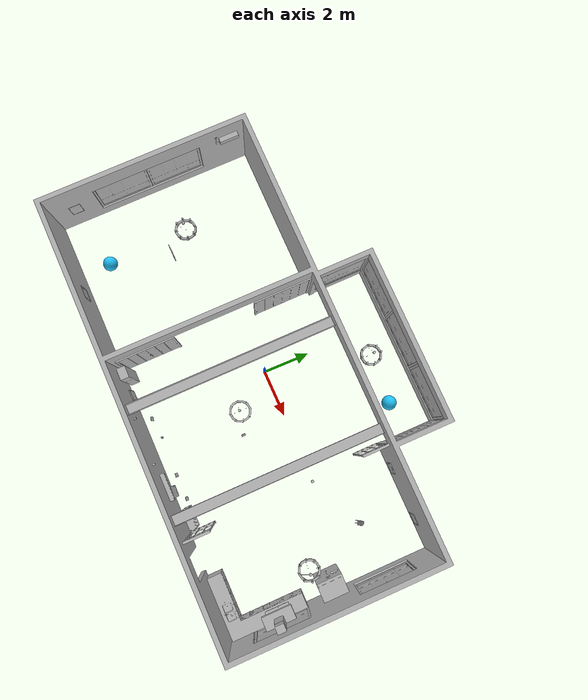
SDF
<sdf version="1.6">
 <world name="default">
  <gravity>0 0 -9.8</gravity>
  <magnetic_field>6e-06 2.3e-05 -4.2e-05</magnetic_field>
  <atmosphere type="adiabatic"/>
  <physics name="default_physics" default="0" type="dart">
   <max_step_size>0.001</max_step_size>
   <real_time_factor>1</real_time_factor>
   <real_time_update_rate>1000</real_time_update_rate>
  </physics>
  <scene>
   <ambient>0.4 0.4 0.4 1</ambient>
   <background>0.7 0.7 0.7 1</background>
   <shadows>false</shadows>
   <grid>false</grid>
   <origin_visual>false</origin_visual>
  </scene>
  <spherical_coordinates>
   <surface_model>EARTH_WGS84</surface_model>
   <latitude_deg>0</latitude_deg>
   <longitude_deg>0</longitude_deg>
   <elevation>0</elevation>
   <heading_deg>0</heading_deg>
  </spherical_coordinates>
  <model name="AirconditionerA_01_001">
   <static>true</static>
   <include><uri>model://aws_robomaker_residential_AirconditionerA_01</uri></include>
   <pose>-9.199410 2.411230 2.084544 0 -0 0</pose>
  </model>
  <model name="AirconditionerB_01_001">
   <static>true</static>
   <include><uri>model://aws_robomaker_residential_AirconditionerB_01</uri></include>
   <pose>-2.004656 -5.226610 0.003485 0 -0 0</pose>
  </model>
  <model name="Ball_01_001">
   <static>true</static>
   <include><uri>model://aws_robomaker_residential_Ball_01</uri></include>
   <pose>3.295503 4.225674 0.318684 0 -0 0</pose>
  </model>
  <model name="Ball_01_003">
   <static>true</static>
   <include><uri>model://aws_robomaker_residential_Ball_01</uri></include>
   <pose>-6.945503 -4.22174 0.318684 0 -0 0</pose>
  </model>
  <model name="Board_01_001">
   <static>true</static>
   <include><uri>model://aws_robomaker_residential_Board_01</uri></include>
   <pose>2.779073 -5.392703 1.538173 0 -0 0</pose>
  </model>
  <model name="Chandelier_01_001">
   <static>true</static>
   <include><uri>model://aws_robomaker_residential_Chandelier_01</uri></include>
   <pose>1.221061 4.155740 1.295000 0 -0 0</pose>
  </model>
  <model name="Chandelier_01_002">
   <static>true</static>
   <include><uri>model://aws_robomaker_residential_Chandelier_01</uri></include>
   <pose>-6.451061 -0.692040 1.810000 0 -0 0</pose>
  </model>
  <model name="Chandelier_01_003">
   <static>true</static>
   <include><uri>model://aws_robomaker_residential_Chandelier_01</uri></include>
   <pose>7.824061 -1.59 1.7510000 0 -0 0</pose>
  </model>
  <model name="Chandelier_01_004">
   <static>true</static>
   <include><uri>model://aws_robomaker_residential_Chandelier_01</uri></include>
   <pose>1.221061 -1.592040 1.7873000 0 -0 0</pose>
  </model>
  <model name="SecurityCamera_01_001">
   <static>true</static>
   <include><uri>model://aws_robomaker_residential_SecurityCamera_01</uri></include>
   <pose>0.842134 -4.996294 0.495067 0 -0 -2.841039</pose>
  </model>
  <model name="CookingBench_01_001">
   <include><uri>model://aws_robomaker_residential_CookingBench_01</uri></include>
   <pose>9.038383 -3.351140 0.903610 0 -0 3.137133</pose>
   <static>true</static>
  </model>
  <model name="FoldingDoor_01_001">
   <static>true</static>
   <include><uri>model://aws_robomaker_residential_FoldingDoor_01</uri></include>
   <pose>-2.461096 1.844219 0.041881 0 -0 0</pose>
  </model>
  <model name="FoldingDoor_01_002">
   <static>true</static>
   <include><uri>model://aws_robomaker_residential_FoldingDoor_01</uri></include>
   <pose>-2.461096 -4.053320 0.041881 0 -0 0</pose>
  </model>
  <model name="HouseWallB_01_001">
   <static>true</static>
   <include><uri>model://aws_robomaker_residential_HouseWallB_01</uri></include>
  </model>
  <model name="FoldingDoor_02_001">
   <static>true</static>
   <include><uri>model://aws_robomaker_residential_FoldingDoor_02</uri></include>
   <pose>4.674231 2.46451 0 0 -0 3.14159</pose>
  </model>
  <model name="FoldingDoor_02_002">
   <static>true</static>
   <include><uri>model://aws_robomaker_residential_FoldingDoor_02</uri></include>
   <pose>4.8912 -4.84968 0 0 -0 0</pose>
  </model>
  <model name="KitchenCabinet_01_001">
   <static>true</static>
   <include><uri>model://aws_robomaker_residential_KitchenCabinet_01</uri></include>
   <pose>8.002009 -3.836509 0.012068 0 -0 -3.140001</pose>
  </model>
  <model name="LightC_01_001">
   <static>true</static>
   <include><uri>model://aws_robomaker_residential_LightC_01</uri></include>
   <pose>1.769567 -5.4443710 2.000000 0 -0 0</pose>
  </model>
  <model name="LightC_01_002">
   <static>true</static>
   <include><uri>model://aws_robomaker_residential_LightC_01</uri></include>
   <pose>-0.138245 -5.4443710 2.000000 0 -0 0</pose>
  </model>
  <model name="PortraitA_01">
   <static>true</static>
   <include><uri>model://aws_robomaker_residential_PortraitA_01</uri></include>
   <pose>-2.712360 -4.817539 1.00000 0 -0 1.566796</pose>
  </model>
  <model name="PortraitB_01">
   <static>true</static>
   <include><uri>model://aws_robomaker_residential_PortraitB_01</uri></include>
   <pose>-1.279683 -5.429630 0.0 -0.076901 0 -3.116718</pose>
  </model>
  <model name="PortraitB_02">
   <static>true</static>
   <include><uri>model://aws_robomaker_residential_PortraitB_02</uri></include>
   <pose>5.737017 3.080310 0.300000 0 -0 0</pose>
  </model>
  <model name="PortraitB_03">
   <static>true</static>
   <include><uri>model://aws_robomaker_residential_PortraitB_03</uri></include>
   <pose>3.071380 -5.349366 0.005494 -0.168428 0.0 3.104232</pose>
  </model>
  <model name="PortraitA_02">
   <static>true</static>
   <include><uri>model://aws_robomaker_residential_PortraitA_02</uri></include>
   <pose>7.937017 3.080310 0.300000 0 -0 3.14</pose>
  </model>
  <model name="PortraitC_01">
   <static>true</static>
   <include><uri>model://aws_robomaker_residential_PortraitC_01</uri></include>
   <pose>-9.294904 -4.526084 1.000000 0 -0 1.554734</pose>
  </model>
  <model name="PortraitE_01">
   <static>true</static>
   <include><uri>model://aws_robomaker_residential_PortraitE_01</uri></include>
   <pose>-5.773094 -5.492466 1.000000 0 -0 3.132627</pose>
  </model>
  <model name="PortraitE_02">
   <static>true</static>
   <include><uri>model://aws_robomaker_residential_PortraitE_02</uri></include>
   <pose>-6.193025 -1.590208 0.3 0 -0 0.004290</pose>
  </model>
  <model name="DeskPortraitA_01">
   <static>true</static>
   <include><uri>model://aws_robomaker_residential_DeskPortraitA_01</uri></include>
   <pose>-0.036864 -5.110156 0.498660 0 -0 2.927784</pose>
  </model>
  <model name="DeskPortraitA_02">
   <static>true</static>
   <include><uri>model://aws_robomaker_residential_DeskPortraitA_02</uri></include>
   <pose>2.046082 -1.892926 0.0703880 -0.018328 -0.000441 1.576216</pose>
  </model>
  <model name="DeskPortraitB_01">
   <static>true</static>
   <include><uri>model://aws_robomaker_residential_DeskPortraitB_01</uri></include>
   <pose>3.547376 -5.083898 -0.012660 -0.336622 -0.000001 3.046741</pose>
  </model>
  <model name="DeskPortraitB_02">
   <static>true</static>
   <include><uri>model://aws_robomaker_residential_DeskPortraitB_02</uri></include>
   <pose>2.486270 -5.102525 -0.012660 -0.336621 0.000000 3.046798</pose>
  </model>
  <model name="Rangehood_01_001">
   <static>true</static>
   <include><uri>model://aws_robomaker_residential_Rangehood_01</uri></include>
   <pose>9.019794 -3.369940 1.507605 0 -0 0</pose>
  </model>
  <model name="Refrigerator_01_001">
   <static>true</static>
   <include><uri>model://aws_robomaker_residential_Refrigerator_01</uri></include>
   <pose>8.702731 -1.032031 0 0 -0 -1.563499</pose>
  </model>
  <model name="ShoeRack_01_001">
   <static>true</static>
   <include><uri>model://aws_robomaker_residential_ShoeRack_01</uri></include>
   <pose>4.297978 -5.173566 0 0 -0 0</pose>
  </model>
  <model name="Tableware_01_001">
   <static>true</static>
   <include><uri>model://aws_robomaker_residential_Tableware_01</uri></include>
   <pose>7.15317 0.982767 0.817812 -0.001238 -0.000976 1.02476</pose>
  </model>
  <model name="RoomWindow_01_001">
   <static>true</static>
   <include><uri>model://aws_robomaker_residential_RoomWindow_01</uri></include>
   <pose>-9.418600 -0.026285 0.502739 0 -0 0</pose>
  </model>
  <model name="RoomWindow_01_002">
   <static>true</static>
   <include><uri>model://aws_robomaker_residential_RoomWindow_01</uri></include>
   <pose>-9.418600 -2.374090 0.502739 0 -0 0</pose>
  </model>
  <model name="RoomWindow_01_003">
   <static>true</static>
   <include><uri>model://aws_robomaker_residential_RoomWindow_01</uri></include>
   <pose>9.422616 -3.373981 0.502739 0 -0 -3.136099</pose>
  </model>
  <model name="RoomWindow_01_004">
   <static>true</static>
   <include><uri>model://aws_robomaker_residential_RoomWindow_01</uri></include>
   <pose>9.422558 0.968520 0.496581 0 -0 -3.136099</pose>
  </model>
  <model name="RoomWindow_01_005">
   <static>true</static>
   <include><uri>model://aws_robomaker_residential_RoomWindow_01</uri></include>
   <pose>4.722317 4.470281 0.502739 0 -0 -3.136099</pose>
  </model>
  <model name="RoomWindow_01_006">
   <static>true</static>
   <include><uri>model://aws_robomaker_residential_RoomWindow_01</uri></include>
   <pose>3.488520 5.600688 0.502739 0 -0 -1.566274</pose>
  </model>
  <model name="RoomWindow_01_007">
   <static>true</static>
   <include><uri>model://aws_robomaker_residential_RoomWindow_01</uri></include>
   <pose>1.140949 5.600688 0.502739 0 -0 -1.566274</pose>
  </model>
  <model name="RoomWindow_01_008">
   <static>true</static>
   <include><uri>model://aws_robomaker_residential_RoomWindow_01</uri></include>
   <pose>-1.199340 5.600688 0.502739 0 -0 -1.566274</pose>
  </model>
  <model name="RoomWindow_01_009">
   <static>true</static>
   <include><uri>model://aws_robomaker_residential_RoomWindow_01</uri></include>
   <pose>-2.396624 4.387607 0.502739 0 -0 0</pose>
  </model>
  <light name="LivingRoom_CeilingLight_0" type="point">
   <pose>1.194296 4.155759 2.2 0 -0 0</pose>
   <diffuse>0.5 0.5 0.5 1</diffuse>
   <specular>0.1 0.1 0.1 1</specular>
   <attenuation>
    <range>20</range>
    <constant>0.32</constant>
    <linear>0.01</linear>
    <quadratic>0.03</quadratic>
   </attenuation>
   <cast_shadows>0</cast_shadows>
   <direction>0 0 -1</direction>
  </light>
  <light name="LivingRoom_CeilingLight_1" type="point">
   <pose>1.194296 -1.589959 2.2 0 -0 0</pose>
   <diffuse>0.5 0.5 0.5 1</diffuse>
   <specular>0.1 0.1 0.1 1</specular>
   <attenuation>
    <range>20</range>
    <constant>0.05</constant>
    <linear>0.01</linear>
    <quadratic>0.09</quadratic>
   </attenuation>
   <cast_shadows>0</cast_shadows>
   <direction>0 0 -1</direction>
  </light>
  <light name="LivingRoom_WallLight_0" type="point">
   <pose>1.76956 -5.444370 2.2 0 -0 0</pose>
   <diffuse>0.24 0.24 0.24 1</diffuse>
   <specular>0.1 0.1 0.1 1</specular>
   <attenuation>
    <range>20</range>
    <constant>0.12</constant>
    <linear>0.00</linear>
    <quadratic>0.03</quadratic>
   </attenuation>
   <direction>0 0 -1</direction>
  </light>
  <light name="LivingRoom_WallLight_1" type="point">
   <pose>-0.13826 -5.444370 2.2 0 -0 0</pose>
   <diffuse>0.24 0.24 0.24 1</diffuse>
   <specular>0.1 0.1 0.1 1</specular>
   <attenuation>
    <range>20</range>
    <constant>0.12</constant>
    <linear>0.00</linear>
    <quadratic>0.03</quadratic>
   </attenuation>
   <direction>0 0 -1</direction>
  </light>
  <light name="TV_Light_0" type="point">
   <pose>0.8269 -4.939577 1.1 0 -0 0</pose>
   <diffuse>0.31372 0.31372 0.34901 1</diffuse>
   <specular>0.1 0.1 0.1 1</specular>
   <attenuation>
    <range>3</range>
    <constant>0.10</constant>
    <linear>0.04</linear>
    <quadratic>0.50</quadratic>
   </attenuation>
   <direction>0 0 -1</direction>
  </light>
  <light name="BedRoom_Portrait_Light_0" type="spot">
   <pose>-6.190379 -1.829697 1.5587 0.3 -0 0.0</pose>
   <diffuse>0.5 0.5 0.5 1</diffuse>
   <specular>0.1 0.1 0.1 1</specular>
   <attenuation>
    <range>20</range>
    <constant>0.50</constant>
    <linear>0.01</linear>
    <quadratic>0.00</quadratic>
   </attenuation>
   <spot><inner_angle>0.6</inner_angle><outer_angle>1.0</outer_angle><falloff>1.0</falloff></spot>
   <direction>0 0 -1</direction>
  </light>
  <light name="BedRoom_CeilingLight_0" type="point">
   <pose>-6.451061 -0.692040 2.000000 0 -0 0</pose>
   <diffuse>0.5 0.5 0.5 1</diffuse>
   <specular>0.1 0.1 0.1 1</specular>
   <attenuation>
    <range>20</range>
    <constant>0.32</constant>
    <linear>0.01</linear>
    <quadratic>0.03</quadratic>
   </attenuation>
   <cast_shadows>0</cast_shadows>
   <direction>0 0 -1</direction>
  </light>
  <light name="Kitchen_CeilingLight_0" type="point">
   <pose>7.8582 -1.5905 2.280000 0 -0 0</pose>
   <diffuse>0.5 0.5 0.5 1</diffuse>
   <specular>0.1 0.1 0.1 1</specular>
   <attenuation>
    <range>20</range>
    <constant>0.3</constant>
    <linear>0.01</linear>
    <quadratic>0.01</quadratic>
   </attenuation>
   <cast_shadows>0</cast_shadows>
   <direction>0 0 -1</direction>
  </light>
  <model name="rgbd_camera">
   <pose>5 0 0.5 0 0.0 3.14</pose>
   <link name="link">
    <pose>0.05 0.05 0.05 0 0 0</pose>
    <inertial>
     <mass>0.1</mass>
     <inertia><ixx>0.000166667</ixx><iyy>0.000166667</iyy><izz>0.000166667</izz></inertia>
    </inertial>
    <collision name="collision"><geometry><box><size>0.1 0.1 0.1</size></box></geometry></collision>
    <visual name="visual"><geometry><box><size>0.1 0.1 0.1</size></box></geometry></visual>
    <sensor name="rgbd_camera" type="rgbd_camera">
     <camera>
      <horizontal_fov>1.047</horizontal_fov>
      <image><width>1280</width><height>1080</height></image>
      <clip><near>0.1</near><far>100</far></clip>
     </camera>
     <always_on>1</always_on>
     <update_rate>30</update_rate>
     <visualize>true</visualize>
     <topic>rgbd_camera</topic>
     <enable_metrics>true</enable_metrics>
    </sensor>
   </link>
  </model>
 </world>
</sdf>

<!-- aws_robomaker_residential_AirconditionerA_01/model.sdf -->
<sdf version="1.6">
  <model name="aws_robomaker_residential_AirconditionerA_01">
    <link name="link">
      <inertial>
        <mass>1.0</mass>
      </inertial>
      <collision name="collision">
        <geometry>
          <mesh>
            <uri>model://aws_robomaker_residential_AirconditionerA_01/meshes/aws_AirconditionerA_01_collision.DAE</uri>
            <scale>1 1 1</scale>
          </mesh>
        </geometry>
      </collision>
      <visual name="visual">
	    <geometry>
          <mesh>
            <uri>model://aws_robomaker_residential_AirconditionerA_01/meshes/aws_AirconditionerA_01_visual.DAE</uri>
          </mesh>
        </geometry>
      <meta> <layer> 1 </layer></meta>
</visual>
    </link>
	<static>1</static>
  </model>
</sdf>

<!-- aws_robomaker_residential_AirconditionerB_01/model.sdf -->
<sdf version="1.6">
  <model name="aws_robomaker_residential_AirconditionerB_01">
    <link name="link">
      <inertial>
        <mass>1.0</mass>
      </inertial>
      <collision name="collision">
        <geometry>
          <mesh>
	  <uri>model://aws_robomaker_residential_AirconditionerB_01/meshes/aws_AirconditionerB_01_collision.DAE</uri>
            <scale>1 1 1</scale>
          </mesh>
        </geometry>
      </collision>
      <visual name="visual">
	    <geometry>
          <mesh>
            <uri>model://aws_robomaker_residential_AirconditionerB_01/meshes/aws_AirconditionerB_01_visual.DAE</uri>
          </mesh>
        </geometry>
      <meta> <layer> 1 </layer></meta>
</visual>
    </link>
  </model>
</sdf>

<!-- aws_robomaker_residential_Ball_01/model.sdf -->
<sdf version="1.6">
  <model name="aws_robomaker_residential_Ball_01">
    <link name="link">
      <inertial>
        <mass>0.12</mass>

          <inertia>
            <ixx>0.030752</ixx>
            <ixy>0</ixy>
            <ixz>0</ixz>
            <iyy>0.030752</iyy>
            <iyz>0</iyz>
            <izz>0.030752</izz>
          </inertia>
      </inertial>
      <collision name="collision">

        <geometry>

          <sphere>
            <radius>0.31 </radius>
          </sphere>

        </geometry>

        <surface>
          <friction>
            <ode>
              <mu>0.85</mu>
              <mu2>0.85</mu2>
            </ode>
          </friction>

          <contact>
            <ode>
              <kd>8500</kd>
              <max_vel>5.1</max_vel>
            </ode>
          </contact>
        </surface>

      </collision>
      <visual name="visual">
	    <geometry>

          <sphere>
            <radius>0.31 </radius>
          </sphere>
      </geometry>
          <material>
            <diffuse>0.12 0.76 0.97 1</diffuse>
            <ambient>0.03 0.21 0.27 1</ambient>
          </material>

      <meta> <layer> 1 </layer></meta>
</visual>
    </link>
  </model>
</sdf>

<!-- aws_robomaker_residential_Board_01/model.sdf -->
<sdf version="1.6">
  <model name="aws_robomaker_residential_Board_01">
    <link name="link">
      <inertial>
        <mass>1.0</mass>
      </inertial>
      <collision name="collision">
        <geometry>
          <mesh>
            <uri>model://aws_robomaker_residential_Board_01/meshes/aws_Board_01_collision.DAE</uri>
            <scale>1 1 1</scale>
          </mesh>
        </geometry>
      </collision>
      <visual name="visual">
	    <geometry>
          <mesh>
            <uri>model://aws_robomaker_residential_Board_01/meshes/aws_Board_01_visual.DAE</uri>
          </mesh>
        </geometry>
      <meta> <layer> 2 </layer></meta>
</visual>
    </link>

    <static>1</static>
  </model>
</sdf>

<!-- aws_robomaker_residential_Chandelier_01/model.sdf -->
<sdf version="1.6">
  <model name="aws_robomaker_residential_Chandelier_01">
    <link name="link">
      <inertial>
        <mass>1.0</mass>
      </inertial>
      <collision name="collision">
        <geometry>
          <mesh>
            <uri>model://aws_robomaker_residential_Chandelier_01/meshes/aws_Chandelier_01_collision.DAE</uri>
            <scale>1 1 1</scale>
          </mesh>
        </geometry>
      </collision>
      <visual name="visual">
	    <geometry>
          <mesh>
            <uri>model://aws_robomaker_residential_Chandelier_01/meshes/aws_Chandelier_01_visual.DAE</uri>
          </mesh>
        </geometry>
      <meta> <layer> 2 </layer></meta>
</visual>
    </link>
	<static>1</static>
  </model>
</sdf>

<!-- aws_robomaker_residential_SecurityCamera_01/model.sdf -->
<sdf version="1.6">
  <model name="aws_robomaker_residential_SecurityCamera_01">
    <link name="link">
      <inertial>
        <mass>1.0</mass>
        <inertia>
          <ixx>18.2222</ixx>
          <ixy>0</ixy>
          <ixz>0</ixz>
          <iyy>18.2222</iyy>
          <iyz>0</iyz>
          <izz>0.0018767</izz>
        </inertia>
      </inertial>
      <collision name="collision">
        <geometry>
          <mesh>
            <uri>model://aws_robomaker_residential_SecurityCamera_01/meshes/aws_SecurityCamera_01_collision.DAE</uri>
            <scale>1 1 1</scale>
          </mesh>
        </geometry>
      </collision>
      <visual name="visual">
	    <geometry>
          <mesh>
            <uri>model://aws_robomaker_residential_SecurityCamera_01/meshes/aws_SecurityCamera_01_visual.DAE</uri>
          </mesh>
        </geometry>
        <meta>
          <layer>2</layer>
        </meta>
      </visual>
    </link>
  </model>
</sdf>

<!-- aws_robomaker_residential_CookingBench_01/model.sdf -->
<sdf version="1.6">
  <model name="aws_robomaker_residential_CookingBench_01">
    <link name="link">
      <inertial>
        <mass>1.0</mass>
      </inertial>
      <collision name="collision">
        <geometry>
          <mesh>
            <uri>model://aws_robomaker_residential_CookingBench_01/meshes/aws_CookingBench_01_collision.DAE</uri>
            <scale>1 1 1</scale>
          </mesh>
        </geometry>
      </collision>
      <visual name="visual">
	    <geometry>
          <mesh>
            <uri>model://aws_robomaker_residential_CookingBench_01/meshes/aws_CookingBench_01_visual.DAE</uri>
          </mesh>
        </geometry>
      <meta> <layer> 1 </layer></meta>
</visual>
    </link>
  </model>
</sdf>

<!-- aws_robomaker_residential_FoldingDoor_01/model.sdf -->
<sdf version="1.6">
  <model name="aws_robomaker_residential_FoldingDoor_01">
    <link name="link">
      <inertial>
        <mass>1.0</mass>
      </inertial>
      <collision name="collision">
        <geometry>
          <mesh>
            <uri>model://aws_robomaker_residential_FoldingDoor_01/meshes/aws_FoldingDoor_01_collision.DAE</uri>
            <scale>1 1 1</scale>
          </mesh>
        </geometry>
      </collision>
      <visual name="visual">
	    <geometry>
          <mesh>
            <uri>model://aws_robomaker_residential_FoldingDoor_01/meshes/aws_FoldingDoor_01_visual.DAE</uri>
          </mesh>
        </geometry>
      <meta> <layer> 2 </layer></meta>
</visual>
    </link>
	<static>1</static>
  </model>
</sdf>

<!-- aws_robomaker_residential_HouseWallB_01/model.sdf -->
<sdf version="1.6">
  <model name="aws_robomaker_residential_HouseWallB_01">
    <link name="link">
      <inertial>
        <mass>1.0</mass>
      </inertial>
      <collision name="collision">
        <geometry>
          <mesh>
            <uri>model://aws_robomaker_residential_HouseWallB_01/meshes/aws_HouseWallB_01_collision.DAE</uri>
            <scale>1 1 1</scale>
          </mesh>
        </geometry>
      </collision>
      <visual name="visual">
	    <geometry>
          <mesh>
            <uri>model://aws_robomaker_residential_HouseWallB_01/meshes/aws_HouseWallB_01_visual.DAE</uri>
          </mesh>
        </geometry>
      <meta> <layer> 2 </layer></meta>
</visual>
    </link>
<static>1</static>
  </model>
</sdf>

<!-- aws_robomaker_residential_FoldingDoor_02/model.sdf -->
<sdf version="1.6">
  <model name="aws_robomaker_residential_FoldingDoor_02">
    <link name="link">
      <inertial>
        <mass>1.0</mass>
      </inertial>
      <collision name="collision">
        <geometry>
          <mesh>
            <uri>model://aws_robomaker_residential_FoldingDoor_02/meshes/aws_FoldingDoor_02_collision.DAE</uri>
            <scale>1 1 1</scale>
          </mesh>
        </geometry>
      </collision>
      <visual name="visual">
	    <geometry>
          <mesh>
            <uri>model://aws_robomaker_residential_FoldingDoor_02/meshes/aws_FoldingDoor_02_visual.DAE</uri>
          </mesh>
        </geometry>
      <meta> <layer> 2 </layer></meta>
</visual>
    </link>
<static>1</static>
  </model>
</sdf>

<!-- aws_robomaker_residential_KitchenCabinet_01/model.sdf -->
<sdf version="1.6">
  <model name="aws_robomaker_residential_KitchenCabinet_01">
    <link name="link">
      <inertial>
        <mass>1.0</mass>
      </inertial>
      <collision name="collision">
        <laser_retro>0</laser_retro>
        <max_contacts>10</max_contacts>
        <geometry>
          <mesh>
            <uri>model://aws_robomaker_residential_KitchenCabinet_01/meshes/aws_KitchenCabinet_01_collision.DAE</uri>
            <scale>1 1 1</scale>
          </mesh>
        </geometry>
      </collision>
      <visual name="visual">
	    <geometry>
          <mesh>
            <uri>model://aws_robomaker_residential_KitchenCabinet_01/meshes/aws_KitchenCabinet_01_visual.DAE</uri>
          </mesh>
        </geometry>
      <meta> <layer> 1 </layer></meta>
</visual>
    </link>

    <static>1</static>
  </model>
</sdf>

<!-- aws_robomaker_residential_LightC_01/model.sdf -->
<sdf version="1.6">
  <model name="aws_robomaker_residential_LightC_01">
    <link name="link">
      <inertial>
        <mass>1.0</mass>
      </inertial>
      <collision name="collision">
        <geometry>
          <mesh>
            <uri>model://aws_robomaker_residential_LightC_01/meshes/aws_LightC_01_collision.DAE</uri>
            <scale>1 1 1</scale>
          </mesh>
        </geometry>
      </collision>
      <visual name="visual">
	    <geometry>
          <mesh>
            <uri>model://aws_robomaker_residential_LightC_01/meshes/aws_LightC_01_visual.DAE</uri>
          </mesh>
        </geometry>
      <meta> <layer> 2 </layer></meta>
</visual>
    </link>
	<static>1</static>
  </model>
</sdf>

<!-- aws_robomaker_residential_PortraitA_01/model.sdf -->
<sdf version="1.6">
  <model name="aws_robomaker_residential_PortraitA_01">
    <link name="link">
      <inertial>
        <mass>1.0</mass>
      </inertial>
      <collision name="collision">
        <geometry>
          <mesh>
            <uri>model://aws_robomaker_residential_PortraitA_01/meshes/aws_PortraitA_01_collision.DAE</uri>
            <scale>1 1 1</scale>
          </mesh>
        </geometry>
      </collision>
      <visual name="visual">
	    <geometry>
          <mesh>
            <uri>model://aws_robomaker_residential_PortraitA_01/meshes/aws_PortraitA_01_visual.DAE</uri>
          </mesh>
        </geometry>
      <meta> <layer> 2 </layer></meta>
</visual>
    </link>
	<static>1</static>
  </model>
</sdf>

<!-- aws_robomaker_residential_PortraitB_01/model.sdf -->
<sdf version="1.6">
  <model name="aws_robomaker_residential_PortraitB_01">
    <link name="link">
      <inertial>
        <mass>1.0</mass>
      </inertial>
      <collision name="collision">
        <geometry>
          <mesh>
            <uri>model://aws_robomaker_residential_PortraitB_01/meshes/aws_PortraitB_01_collision.DAE</uri>
            <scale>1 1 1</scale>
          </mesh>
        </geometry>
      </collision>
      <visual name="visual">
	    <geometry>
          <mesh>
            <uri>model://aws_robomaker_residential_PortraitB_01/meshes/aws_PortraitB_01_visual.DAE</uri>
          </mesh>
        </geometry>
      <meta> <layer> 2 </layer></meta>
</visual>
    </link>
	<static>1</static>
  </model>
</sdf>

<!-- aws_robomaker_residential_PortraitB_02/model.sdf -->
<sdf version="1.6">
  <model name="aws_robomaker_residential_PortraitB_02">
    <link name="link">
      <inertial>
        <mass>1.0</mass>
      </inertial>
      <collision name="collision">
        <geometry>
          <mesh>
            <uri>model://aws_robomaker_residential_PortraitB_02/meshes/aws_PortraitB_01_collision.DAE</uri>
            <scale>1 1 1</scale>
          </mesh>
        </geometry>
      </collision>
      <visual name="visual">
	    <geometry>
          <mesh>
            <uri>model://aws_robomaker_residential_PortraitB_02/meshes/aws_PortraitB_01_visual.DAE</uri>
          </mesh>
        </geometry>
      <meta> <layer> 2 </layer></meta>
</visual>
    </link>
	<static>1</static>
  </model>
</sdf>

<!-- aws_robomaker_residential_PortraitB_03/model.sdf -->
<sdf version="1.6">
  <model name="aws_robomaker_residential_PortraitB_03">
    <link name="link">
      <inertial>
        <mass>1.0</mass>
      </inertial>
      <collision name="collision">
        <geometry>
          <mesh>
            <uri>model://aws_robomaker_residential_PortraitB_03/meshes/aws_PortraitB_01_collision.DAE</uri>
            <scale>1 1 1</scale>
          </mesh>
        </geometry>
      </collision>
      <visual name="visual">
	    <geometry>
          <mesh>
            <uri>model://aws_robomaker_residential_PortraitB_03/meshes/aws_PortraitB_01_visual.DAE</uri>
          </mesh>
        </geometry>
      <meta> <layer> 2 </layer></meta>
</visual>
    </link>
	<static>1</static>
  </model>
</sdf>

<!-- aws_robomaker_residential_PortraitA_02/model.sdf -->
<sdf version="1.6">
  <model name="aws_robomaker_residential_PortraitA_02">
    <link name="link">
      <inertial>
        <mass>1.0</mass>
      </inertial>
      <collision name="collision">
        <geometry>
          <mesh>
            <uri>model://aws_robomaker_residential_PortraitA_02/meshes/aws_PortraitA_01_collision.DAE</uri>
            <scale>1 1 1</scale>
          </mesh>
        </geometry>
      </collision>
      <visual name="visual">
	    <geometry>
          <mesh>
            <uri>model://aws_robomaker_residential_PortraitA_02/meshes/aws_PortraitA_01_visual.DAE</uri>
          </mesh>
        </geometry>
      <meta> <layer> 2 </layer></meta>
</visual>
    </link>
	<static>1</static>
  </model>
</sdf>

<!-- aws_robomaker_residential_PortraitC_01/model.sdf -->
<sdf version="1.6">
  <model name="aws_robomaker_residential_PortraitC_01">
    <link name="link">
      <inertial>
        <mass>1.0</mass>
      </inertial>
      <collision name="collision">
        <geometry>
          <mesh>
            <uri>model://aws_robomaker_residential_PortraitC_01/meshes/aws_PortraitC_01_collision.DAE</uri>
            <scale>1 1 1</scale>
          </mesh>
        </geometry>
      </collision>
      <visual name="visual">
	    <geometry>
          <mesh>
            <uri>model://aws_robomaker_residential_PortraitC_01/meshes/aws_PortraitC_01_visual.DAE</uri>
          </mesh>
        </geometry>
      <meta> <layer> 2 </layer></meta>
</visual>
    </link>
	<static>1</static>
  </model>
</sdf>

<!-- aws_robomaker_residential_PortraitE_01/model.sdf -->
<sdf version="1.6">
  <model name="aws_robomaker_residential_PortraitE_01">
    <link name="link">
      <inertial>
        <mass>1.0</mass>
      </inertial>
      <collision name="collision">
        <geometry>
          <mesh>
            <uri>model://aws_robomaker_residential_PortraitE_01/meshes/aws_PortraitE_01_collision.DAE</uri>
            <scale>1 1 1</scale>
          </mesh>
        </geometry>
      </collision>
      <visual name="visual">
	    <geometry>
          <mesh>
            <uri>model://aws_robomaker_residential_PortraitE_01/meshes/aws_PortraitE_01_visual.DAE</uri>
          </mesh>
        </geometry>
      <meta> <layer> 2 </layer></meta>
</visual>
    </link>
	<static>1</static>
  </model>
</sdf>

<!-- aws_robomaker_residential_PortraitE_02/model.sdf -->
<sdf version="1.6">
  <model name="aws_robomaker_residential_PortraitE_02">
    <link name="link">
      <inertial>
        <mass>1.0</mass>
      </inertial>
      <collision name="collision">
        <geometry>
          <mesh>
            <uri>model://aws_robomaker_residential_PortraitE_02/meshes/aws_PortraitE_01_collision.DAE</uri>
            <scale>1 1 1</scale>
          </mesh>
        </geometry>
      </collision>
      <visual name="visual">
	    <geometry>
          <mesh>
            <uri>model://aws_robomaker_residential_PortraitE_02/meshes/aws_PortraitE_01_visual.DAE</uri>
          </mesh>
        </geometry>
      <meta> <layer> 2 </layer></meta>
</visual>
    </link>
	<static>1</static>
  </model>
</sdf>

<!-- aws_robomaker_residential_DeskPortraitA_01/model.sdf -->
<sdf version="1.6">
  <model name="aws_robomaker_residential_DeskPortraitA_01">
    <link name="link">

      <inertial>
        <mass>1.0</mass>
        <inertia>
            <ixx>0.0835</ixx>
            <ixy>0</ixy>
            <ixz>0</ixz>
            <iyy>0.16</iyy>
            <iyz>0</iyz>
            <izz>0.08347</izz>
        </inertia>
      </inertial>

      <collision name="collision">
        <geometry>
          <mesh>
            <uri>model://aws_robomaker_residential_DeskPortraitA_01/meshes/aws_DeskPortraitA_01_collision.DAE</uri>
            <scale>1 1 1</scale>
          </mesh>
        </geometry>
      </collision>

      <visual name="visual">
	    <geometry>
          <mesh>
            <uri>model://aws_robomaker_residential_DeskPortraitA_01/meshes/aws_DeskPortraitA_01_visual.DAE</uri>
          </mesh>
        </geometry>
      <meta> <layer> 1 </layer></meta>
</visual>
    </link>
  </model>
</sdf>

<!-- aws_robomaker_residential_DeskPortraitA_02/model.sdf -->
<sdf version="1.6">
  <model name="aws_robomaker_residential_DeskPortraitA_02">
    <link name="link">

      <inertial>
        <mass>1.0</mass>
        <inertia>
            <ixx>0.0835</ixx>
            <ixy>0</ixy>
            <ixz>0</ixz>
            <iyy>0.16</iyy>
            <iyz>0</iyz>
            <izz>0.08347</izz>
        </inertia>
      </inertial>

      <collision name="collision">
        <geometry>
          <mesh>
            <uri>model://aws_robomaker_residential_DeskPortraitA_02/meshes/aws_DeskPortraitA_01_collision.DAE</uri>
            <scale>1 1 1</scale>
          </mesh>
        </geometry>
      </collision>

      <visual name="visual">
	    <geometry>
          <mesh>
            <uri>model://aws_robomaker_residential_DeskPortraitA_02/meshes/aws_DeskPortraitA_01_visual.DAE</uri>
          </mesh>
        </geometry>
      <meta> <layer> 1 </layer></meta>
</visual>
    </link>
  </model>
</sdf>

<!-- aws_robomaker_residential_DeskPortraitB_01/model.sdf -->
<sdf version="1.6">
  <model name="aws_robomaker_residential_DeskPortraitB_01">
    <link name="link">

      <inertial>
        <mass>1.0</mass>
        <inertia>
            <ixx>0.0135</ixx>
            <ixy>0</ixy>
            <ixz>0</ixz>
            <iyy>0.02</iyy>
            <iyz>0</iyz>
            <izz>0.01347</izz>
        </inertia>
      </inertial>

      <collision name="collision">
        <geometry>
          <mesh>
            <uri>model://aws_robomaker_residential_DeskPortraitB_01/meshes/aws_DeskPortraitB_01_collision.DAE</uri>
            <scale>1 1 1</scale>
          </mesh>
        </geometry>
      </collision>

      <visual name="visual">
	    <geometry>
          <mesh>
            <uri>model://aws_robomaker_residential_DeskPortraitB_01/meshes/aws_DeskPortraitB_01_visual.DAE</uri>
          </mesh>
        </geometry>
      <meta> <layer> 1 </layer></meta>
</visual>
    </link>
  </model>
</sdf>

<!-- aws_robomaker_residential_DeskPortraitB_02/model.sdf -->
<sdf version="1.6">
  <model name="aws_robomaker_residential_DeskPortraitB_02">
    <link name="link">

      <inertial>
        <mass>1.0</mass>
        <inertia>
            <ixx>0.0135</ixx>
            <ixy>0</ixy>
            <ixz>0</ixz>
            <iyy>0.02</iyy>
            <iyz>0</iyz>
            <izz>0.01347</izz>
        </inertia>
      </inertial>

      <collision name="collision">
        <geometry>
          <mesh>
            <uri>model://aws_robomaker_residential_DeskPortraitB_02/meshes/aws_DeskPortraitB_01_collision.DAE</uri>
            <scale>1 1 1</scale>
          </mesh>
        </geometry>
      </collision>

      <visual name="visual">
	    <geometry>
          <mesh>
            <uri>model://aws_robomaker_residential_DeskPortraitB_02/meshes/aws_DeskPortraitB_01_visual.DAE</uri>
          </mesh>
        </geometry>
      <meta> <layer> 1 </layer></meta>
</visual>
    </link>
  </model>
</sdf>

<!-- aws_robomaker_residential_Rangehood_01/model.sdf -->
<sdf version="1.6">
  <model name="aws_robomaker_residential_Rangehood_01">
    <link name="link">
      <inertial>
        <mass>1.0</mass>
      </inertial>
      <collision name="collision">
        <geometry>
          <mesh>
            <uri>model://aws_robomaker_residential_Rangehood_01/meshes/aws_Rangehood_01_collision.DAE</uri>
            <scale>1 1 1</scale>
          </mesh>
        </geometry>
      </collision>
      <visual name="visual">
	    <geometry>
          <mesh>
            <uri>model://aws_robomaker_residential_Rangehood_01/meshes/aws_Rangehood_01_visual.DAE</uri>
          </mesh>
        </geometry>
      <meta> <layer> 2 </layer></meta>
</visual>
    </link>
	<static>1</static>
  </model>
</sdf>

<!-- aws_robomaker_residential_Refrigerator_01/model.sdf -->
<sdf version="1.6">
  <model name="aws_robomaker_residential_Refrigerator_01">
    <link name="link">
      <inertial>
        <mass>1.0</mass>
      </inertial>
      <collision name="collision">
        <geometry>
          <mesh>
            <uri>model://aws_robomaker_residential_Refrigerator_01/meshes/aws_Refrigerator_01_collision.DAE</uri>
            <scale>1 1 1</scale>
          </mesh>
        </geometry>
      </collision>
      <visual name="visual">
	    <geometry>
          <mesh>
            <uri>model://aws_robomaker_residential_Refrigerator_01/meshes/aws_Refrigerator_01_visual.DAE</uri>
          </mesh>
        </geometry>
      <meta> <layer> 1 </layer></meta>
</visual>
    </link>
    <static>1</static>
  </model>
</sdf>

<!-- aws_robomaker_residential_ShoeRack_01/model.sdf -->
<sdf version="1.6">
  <model name="aws_robomaker_residential_ShoeRack_01">
    <link name="link">

      <inertial>
        <mass>6</mass>
      </inertial>

      <collision name="collision">

        <geometry>
          <mesh>
            <uri>model://aws_robomaker_residential_ShoeRack_01/meshes/aws_ShoeRack_01_collision.DAE</uri>
            <scale>1 1 1</scale>
          </mesh>
        </geometry>

        <surface>
          <friction>
            <ode>
              <mu>0.2</mu>
              <mu2>0.2</mu2>
            </ode>
          </friction>

          <contact>
            <ode>
              <kd>2500</kd>
            </ode>
          </contact>

        </surface>

      </collision>

      <visual name="visual">
	    <geometry>
          <mesh>
            <uri>model://aws_robomaker_residential_ShoeRack_01/meshes/aws_ShoeRack_01_visual.DAE</uri>
          </mesh>
        </geometry>
      <meta> <layer> 1 </layer></meta>
</visual>

    </link>
  </model>
</sdf>

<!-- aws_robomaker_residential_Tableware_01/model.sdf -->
<sdf version="1.6">
  <model name="aws_robomaker_residential_Tableware_01">
    <link name="link">
      <inertial>
        <mass>1.0</mass>
      </inertial>
      <collision name="collision">
        <geometry>
          <mesh>
            <uri>model://aws_robomaker_residential_Tableware_01/meshes/aws_Tableware_01_collision.DAE</uri>
            <scale>1 1 1</scale>
          </mesh>
        </geometry>
      </collision>
      <visual name="visual">
	    <geometry>
          <mesh>
            <uri>model://aws_robomaker_residential_Tableware_01/meshes/aws_Tableware_01_visual.DAE</uri>
          </mesh>
        </geometry>
      <meta> <layer> 1 </layer></meta>
</visual>
    </link>
  </model>
</sdf>

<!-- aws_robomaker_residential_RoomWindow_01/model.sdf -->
<sdf version="1.6">
  <model name="aws_robomaker_residential_RoomWindow_01">
    <link name="link">
      <inertial>
        <mass>1.0</mass>
      </inertial>
      <collision name="collision">
        <geometry>
          <mesh>
            <uri>model://aws_robomaker_residential_RoomWindow_01/meshes/aws_RoomWindow_01_collision.DAE</uri>
            <scale>1 1 1</scale>
          </mesh>
        </geometry>
      </collision>
      <visual name="visual">
	    <geometry>
          <mesh>
            <uri>model://aws_robomaker_residential_RoomWindow_01/meshes/aws_RoomWindow_01_visual.DAE</uri>
          </mesh>
        </geometry>
      <meta> <layer> 2 </layer></meta>
</visual>
    </link>
	<static>1</static>
  </model>
</sdf>
